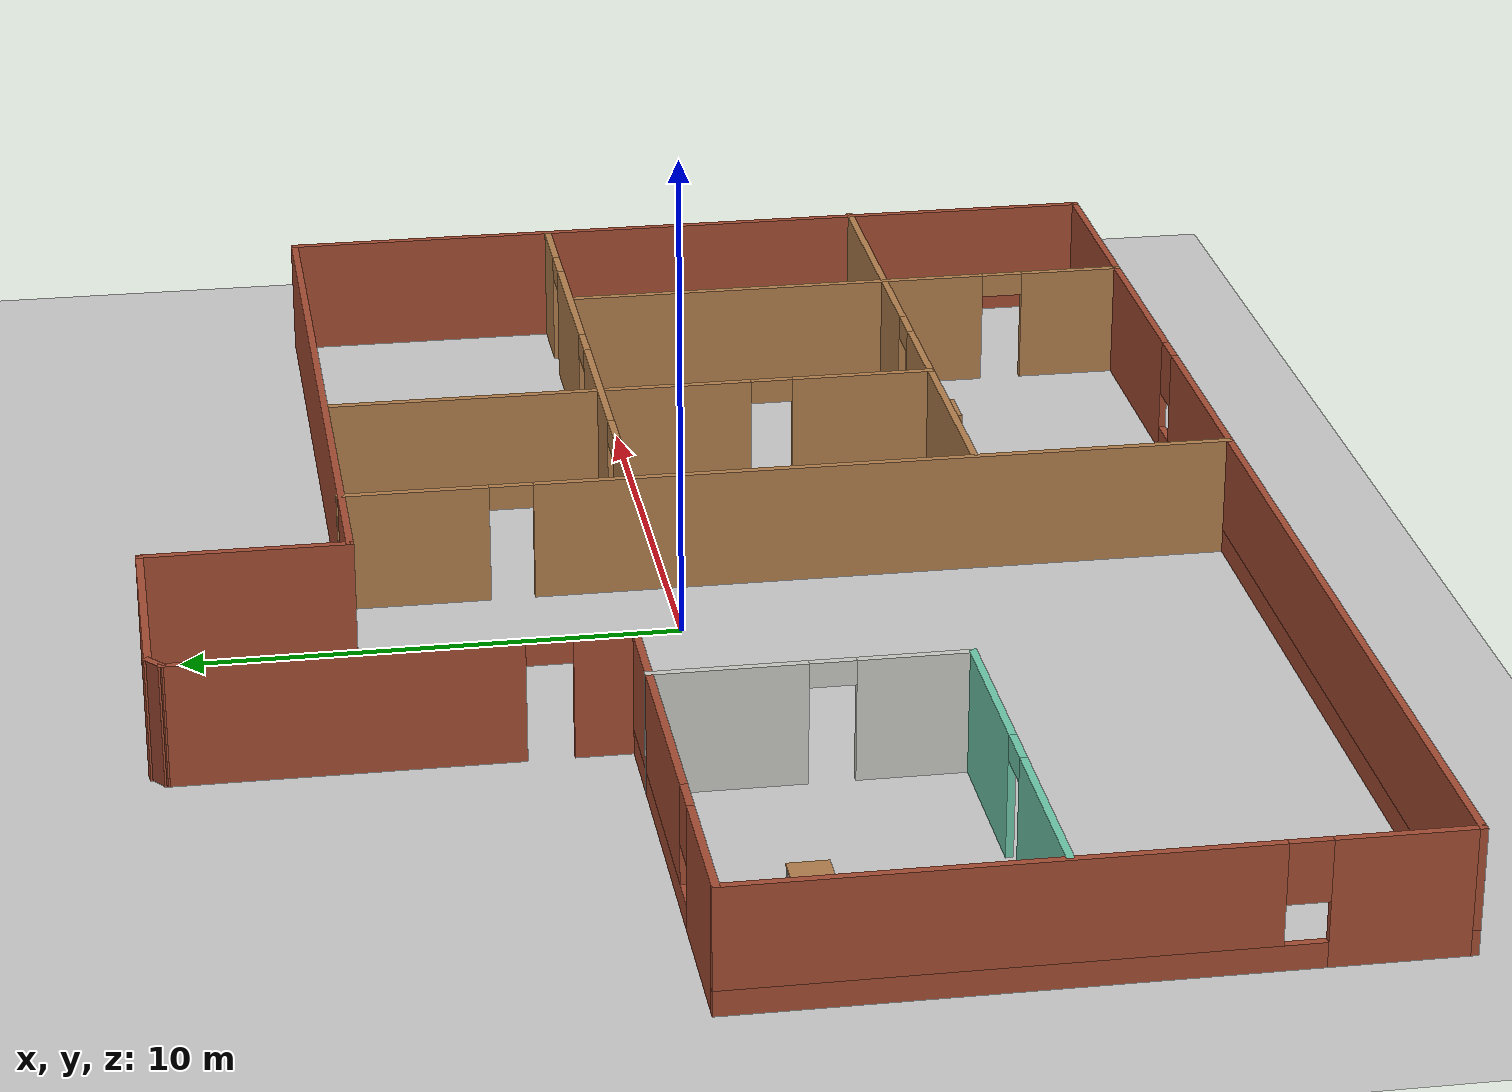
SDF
<sdf version="1.6">
 <world name="default">
  <light name="sun" type="directional">
   <pose>0 0 10 0 -0 0</pose>
   <diffuse>0.8 0.8 0.8 1</diffuse>
   <specular>0.2 0.2 0.2 1</specular>
   <attenuation>
    <range>1000</range>
    <constant>0.9</constant>
    <linear>0.01</linear>
    <quadratic>0.001</quadratic>
   </attenuation>
   <direction>-0.5 0.1 -0.9</direction>
  </light>
  <model name="ground_plane">
   <static>1</static>
   <link name="link">
    <collision name="collision">
     <geometry><plane><normal>0 0 1</normal><size>100 100</size></plane></geometry>
     <surface>
      <contact><collide_bitmask>65535</collide_bitmask></contact>
      <friction><ode><mu>100</mu><mu2>50</mu2></ode></friction>
     </surface>
    </collision>
    <visual name="visual">
     <cast_shadows>0</cast_shadows>
     <geometry><plane><normal>0 0 1</normal><size>100 100</size></plane></geometry>
     <material>
      <script><uri>file://media/materials/scripts/gazebo.material</uri><name>Gazebo/Grey</name></script>
     </material>
    </visual>
   </link>
  </model>
  <gravity>0 0 -9.8</gravity>
  <magnetic_field>6e-06 2.3e-05 -4.2e-05</magnetic_field>
  <atmosphere type="adiabatic"/>
  <physics name="default_physics" default="0" type="ode">
   <max_step_size>0.001</max_step_size>
   <real_time_factor>1</real_time_factor>
   <real_time_update_rate>1000</real_time_update_rate>
  </physics>
  <scene><ambient>0.4 0.4 0.4 1</ambient><background>0.7 0.7 0.7 1</background><shadows>1</shadows></scene>
  <spherical_coordinates>
   <surface_model>EARTH_WGS84</surface_model>
   <latitude_deg>0</latitude_deg>
   <longitude_deg>0</longitude_deg>
   <elevation>0</elevation>
   <heading_deg>0</heading_deg>
  </spherical_coordinates>
  <model name="strange_room_project_1">
   <pose>0.77042 -0.5223 0 0 -0 0</pose>
   <link name="Wall_1">
    <collision name="Wall_1_Collision">
     <geometry><box><size>4.75 0.15 2.5</size></box></geometry>
     <pose>0 0 1.25 0 -0 0</pose>
    </collision>
    <visual name="Wall_1_Visual">
     <pose>0 0 1.25 0 -0 0</pose>
     <geometry><box><size>4.75 0.15 2.5</size></box></geometry>
     <material>
      <script><uri>file://media/materials/scripts/gazebo.material</uri><name>Gazebo/Bricks</name></script>
      <ambient>0.435294 0.796078 0.67451 1</ambient>
     </material>
     <meta><layer>0</layer></meta>
    </visual>
    <pose>-3.26123 11.2097 0 0 -0 0</pose>
   </link>
   <link name="Wall_10">
    <collision name="Wall_10_Collision">
     <geometry><box><size>0.540512 0.15 2.5</size></box></geometry>
     <pose>0 0 1.25 0 -0 0</pose>
    </collision>
    <visual name="Wall_10_Visual">
     <pose>0 0 1.25 0 -0 0</pose>
     <geometry><box><size>0.540512 0.15 2.5</size></box></geometry>
     <material>
      <script><uri>file://media/materials/scripts/gazebo.material</uri><name>Gazebo/Bricks</name></script>
      <ambient>0.435294 0.796078 0.67451 1</ambient>
     </material>
     <meta><layer>0</layer></meta>
    </visual>
    <pose>-5.71122 11.0847 0 0 -0 0.694738</pose>
   </link>
   <link name="Wall_12">
    <pose>-7.58378 -0.937122 0 0 0 -1.5708</pose>
    <visual name="Wall_12_Visual_0">
     <pose>-1.59262 0 1.25 0 -0 0</pose>
     <geometry><box><size>3.06475 0.15 2.5</size></box></geometry>
     <material>
      <script><uri>file://media/materials/scripts/gazebo.material</uri><name>Gazebo/CeilingTiled</name></script>
      <ambient>0.435294 0.796078 0.67451 1</ambient>
     </material>
     <meta><layer>0</layer></meta>
    </visual>
    <collision name="Wall_12_Collision_0">
     <geometry><box><size>3.06475 0.15 2.5</size></box></geometry>
     <pose>-1.59262 0 1.25 0 -0 0</pose>
    </collision>
    <visual name="Wall_12_Visual_1">
     <pose>1.98238 0 1.25 0 -0 0</pose>
     <geometry><box><size>2.28525 0.15 2.5</size></box></geometry>
     <material>
      <script><uri>file://media/materials/scripts/gazebo.material</uri><name>Gazebo/CeilingTiled</name></script>
      <ambient>0.435294 0.796078 0.67451 1</ambient>
     </material>
     <meta><layer>0</layer></meta>
    </visual>
    <collision name="Wall_12_Collision_1">
     <geometry><box><size>2.28525 0.15 2.5</size></box></geometry>
     <pose>1.98238 0 1.25 0 -0 0</pose>
    </collision>
    <visual name="Wall_12_Visual_2">
     <pose>0.389755 0 2.25 0 -0 0</pose>
     <geometry><box><size>0.9 0.15 0.5</size></box></geometry>
     <material>
      <script><uri>file://media/materials/scripts/gazebo.material</uri><name>Gazebo/CeilingTiled</name></script>
      <ambient>0.435294 0.796078 0.67451 1</ambient>
     </material>
     <meta><layer>0</layer></meta>
    </visual>
    <collision name="Wall_12_Collision_2">
     <geometry><box><size>0.9 0.15 0.5</size></box></geometry>
     <pose>0.389755 0 2.25 0 -0 0</pose>
    </collision>
   </link>
   <link name="Wall_15">
    <pose>-11.6338 -3.98712 0 0 -0 3.14159</pose>
    <visual name="Wall_15_Visual_0">
     <pose>-2.35227 0 1.25 0 -0 0</pose>
     <geometry><box><size>3.54546 0.15 2.5</size></box></geometry>
     <material>
      <script><uri>file://media/materials/scripts/gazebo.material</uri><name>Gazebo/Grey</name></script>
      <ambient>0.435294 0.796078 0.67451 1</ambient>
     </material>
     <meta><layer>0</layer></meta>
    </visual>
    <collision name="Wall_15_Collision_0">
     <geometry><box><size>3.54546 0.15 2.5</size></box></geometry>
     <pose>-2.35227 0 1.25 0 -0 0</pose>
    </collision>
    <visual name="Wall_15_Visual_1">
     <pose>2.22273 0 1.25 0 -0 0</pose>
     <geometry><box><size>3.80455 0.15 2.5</size></box></geometry>
     <material>
      <script><uri>file://media/materials/scripts/gazebo.material</uri><name>Gazebo/Grey</name></script>
      <ambient>0.435294 0.796078 0.67451 1</ambient>
     </material>
     <meta><layer>0</layer></meta>
    </visual>
    <collision name="Wall_15_Collision_1">
     <geometry><box><size>3.80455 0.15 2.5</size></box></geometry>
     <pose>2.22273 0 1.25 0 -0 0</pose>
    </collision>
    <visual name="Wall_15_Visual_2">
     <pose>-0.129545 0 2.25 0 -0 0</pose>
     <geometry><box><size>0.9 0.15 0.5</size></box></geometry>
     <material>
      <script><uri>file://media/materials/scripts/gazebo.material</uri><name>Gazebo/Grey</name></script>
      <ambient>0.435294 0.796078 0.67451 1</ambient>
     </material>
     <meta><layer>0</layer></meta>
    </visual>
    <collision name="Wall_15_Collision_2">
     <geometry><box><size>0.9 0.15 0.5</size></box></geometry>
     <pose>-0.129545 0 2.25 0 -0 0</pose>
    </collision>
   </link>
   <link name="Wall_17">
    <pose>1.35237 -2.03802 0 0 0 -1.5708</pose>
    <visual name="Wall_17_Visual_0">
     <pose>-7.7112 0 1.25 0 -0 0</pose>
     <geometry><box><size>3.07761 0.15 2.5</size></box></geometry>
     <material>
      <script><uri>file://media/materials/scripts/gazebo.material</uri><name>Gazebo/Wood</name></script>
      <ambient>0.435294 0.796078 0.67451 1</ambient>
     </material>
     <meta><layer>0</layer></meta>
    </visual>
    <collision name="Wall_17_Collision_0">
     <geometry><box><size>3.07761 0.15 2.5</size></box></geometry>
     <pose>-7.7112 0 1.25 0 -0 0</pose>
    </collision>
    <visual name="Wall_17_Visual_1">
     <pose>1.9888 0 1.25 0 -0 0</pose>
     <geometry><box><size>14.5224 0.15 2.5</size></box></geometry>
     <material>
      <script><uri>file://media/materials/scripts/gazebo.material</uri><name>Gazebo/Wood</name></script>
      <ambient>0.435294 0.796078 0.67451 1</ambient>
     </material>
     <meta><layer>0</layer></meta>
    </visual>
    <collision name="Wall_17_Collision_1">
     <geometry><box><size>14.5224 0.15 2.5</size></box></geometry>
     <pose>1.9888 0 1.25 0 -0 0</pose>
    </collision>
    <visual name="Wall_17_Visual_2">
     <pose>-5.72239 0 2.25 0 -0 0</pose>
     <geometry><box><size>0.9 0.15 0.5</size></box></geometry>
     <material>
      <script><uri>file://media/materials/scripts/gazebo.material</uri><name>Gazebo/Wood</name></script>
      <ambient>0.435294 0.796078 0.67451 1</ambient>
     </material>
     <meta><layer>0</layer></meta>
    </visual>
    <collision name="Wall_17_Collision_2">
     <geometry><box><size>0.9 0.15 0.5</size></box></geometry>
     <pose>-5.72239 0 2.25 0 -0 0</pose>
    </collision>
   </link>
   <link name="Wall_19">
    <pose>8.46168 1.25779 0 0 -0 0</pose>
    <visual name="Wall_19_Visual_0">
     <pose>-6.07739 0 1.25 0 -0 0</pose>
     <geometry><box><size>2.09521 0.15 2.5</size></box></geometry>
     <material>
      <script><uri>file://media/materials/scripts/gazebo.material</uri><name>Gazebo/Wood</name></script>
      <ambient>0.435294 0.796078 0.67451 1</ambient>
     </material>
     <meta><layer>0</layer></meta>
    </visual>
    <collision name="Wall_19_Collision_0">
     <geometry><box><size>2.09521 0.15 2.5</size></box></geometry>
     <pose>-6.07739 0 1.25 0 -0 0</pose>
    </collision>
    <visual name="Wall_19_Visual_1">
     <pose>-2.13756 0 1.25 0 -0 0</pose>
     <geometry><box><size>3.98446 0.15 2.5</size></box></geometry>
     <material>
      <script><uri>file://media/materials/scripts/gazebo.material</uri><name>Gazebo/Wood</name></script>
      <ambient>0.435294 0.796078 0.67451 1</ambient>
     </material>
     <meta><layer>0</layer></meta>
    </visual>
    <collision name="Wall_19_Collision_1">
     <geometry><box><size>3.98446 0.15 2.5</size></box></geometry>
     <pose>-2.13756 0 1.25 0 -0 0</pose>
    </collision>
    <visual name="Wall_19_Visual_2">
     <pose>2.70297 0 1.25 0 -0 0</pose>
     <geometry><box><size>3.8966 0.15 2.5</size></box></geometry>
     <material>
      <script><uri>file://media/materials/scripts/gazebo.material</uri><name>Gazebo/Wood</name></script>
      <ambient>0.435294 0.796078 0.67451 1</ambient>
     </material>
     <meta><layer>0</layer></meta>
    </visual>
    <collision name="Wall_19_Collision_2">
     <geometry><box><size>3.8966 0.15 2.5</size></box></geometry>
     <pose>2.70297 0 1.25 0 -0 0</pose>
    </collision>
    <visual name="Wall_19_Visual_3">
     <pose>6.33814 0 1.25 0 -0 0</pose>
     <geometry><box><size>1.57373 0.15 2.5</size></box></geometry>
     <material>
      <script><uri>file://media/materials/scripts/gazebo.material</uri><name>Gazebo/Wood</name></script>
      <ambient>0.435294 0.796078 0.67451 1</ambient>
     </material>
     <meta><layer>0</layer></meta>
    </visual>
    <collision name="Wall_19_Collision_3">
     <geometry><box><size>1.57373 0.15 2.5</size></box></geometry>
     <pose>6.33814 0 1.25 0 -0 0</pose>
    </collision>
    <visual name="Wall_19_Visual_4">
     <pose>-4.57979 0 2.25 0 -0 0</pose>
     <geometry><box><size>0.9 0.15 0.5</size></box></geometry>
     <material>
      <script><uri>file://media/materials/scripts/gazebo.material</uri><name>Gazebo/Wood</name></script>
      <ambient>0.435294 0.796078 0.67451 1</ambient>
     </material>
     <meta><layer>0</layer></meta>
    </visual>
    <collision name="Wall_19_Collision_4">
     <geometry><box><size>0.9 0.15 0.5</size></box></geometry>
     <pose>-4.57979 0 2.25 0 -0 0</pose>
    </collision>
    <visual name="Wall_19_Visual_5">
     <pose>0.304668 0 2.25 0 -0 0</pose>
     <geometry><box><size>0.9 0.15 0.5</size></box></geometry>
     <material>
      <script><uri>file://media/materials/scripts/gazebo.material</uri><name>Gazebo/Wood</name></script>
      <ambient>0.435294 0.796078 0.67451 1</ambient>
     </material>
     <meta><layer>0</layer></meta>
    </visual>
    <collision name="Wall_19_Collision_5">
     <geometry><box><size>0.9 0.15 0.5</size></box></geometry>
     <pose>0.304668 0 2.25 0 -0 0</pose>
    </collision>
    <visual name="Wall_19_Visual_6">
     <pose>5.10127 0 2.25 0 -0 0</pose>
     <geometry><box><size>0.9 0.15 0.5</size></box></geometry>
     <material>
      <script><uri>file://media/materials/scripts/gazebo.material</uri><name>Gazebo/Wood</name></script>
      <ambient>0.435294 0.796078 0.67451 1</ambient>
     </material>
     <meta><layer>0</layer></meta>
    </visual>
    <collision name="Wall_19_Collision_6">
     <geometry><box><size>0.9 0.15 0.5</size></box></geometry>
     <pose>5.10127 0 2.25 0 -0 0</pose>
    </collision>
   </link>
   <link name="Wall_2">
    <collision name="Wall_2_Collision">
     <geometry><box><size>4.25 0.15 2.5</size></box></geometry>
     <pose>0 0 1.25 0 -0 0</pose>
    </collision>
    <visual name="Wall_2_Visual">
     <pose>0 0 1.25 0 -0 0</pose>
     <geometry><box><size>4.25 0.15 2.5</size></box></geometry>
     <material>
      <script><uri>file://media/materials/scripts/gazebo.material</uri><name>Gazebo/Bricks</name></script>
      <ambient>0.435294 0.796078 0.67451 1</ambient>
     </material>
     <meta><layer>0</layer></meta>
    </visual>
    <pose>-0.961225 9.15968 0 0 0 -1.5708</pose>
   </link>
   <link name="Wall_3">
    <collision name="Wall_3_Collision">
     <geometry><box><size>16.75 0.15 2.5</size></box></geometry>
     <pose>0 0 1.25 0 -0 0</pose>
    </collision>
    <visual name="Wall_3_Visual">
     <pose>0 0 1.25 0 -0 0</pose>
     <geometry><box><size>16.75 0.15 2.5</size></box></geometry>
     <material>
      <script><uri>file://media/materials/scripts/gazebo.material</uri><name>Gazebo/Bricks</name></script>
      <ambient>0.435294 0.796078 0.67451 1</ambient>
     </material>
     <meta><layer>0</layer></meta>
    </visual>
    <pose>7.33878 7.10969 0 0 -0 0</pose>
   </link>
   <link name="Wall_4">
    <collision name="Wall_4_Collision">
     <geometry><box><size>18.5 0.15 2.5</size></box></geometry>
     <pose>0 0 1.25 0 -0 0</pose>
    </collision>
    <visual name="Wall_4_Visual">
     <pose>0 0 1.25 0 -0 0</pose>
     <geometry><box><size>18.5 0.15 2.5</size></box></geometry>
     <material>
      <script><uri>file://media/materials/scripts/gazebo.material</uri><name>Gazebo/Bricks</name></script>
      <ambient>0.435294 0.796078 0.67451 1</ambient>
     </material>
     <meta><layer>0</layer></meta>
    </visual>
    <pose>15.6388 -2.06532 0 0 0 -1.5708</pose>
   </link>
   <link name="Wall_5">
    <pose>-0.036225 -11.2403 0 0 -0 3.14159</pose>
    <visual name="Wall_5_Visual_0">
     <pose>-11.2976 0 1.25 0 -0 0</pose>
     <geometry><box><size>8.90478 0.15 2.5</size></box></geometry>
     <material>
      <script><uri>file://media/materials/scripts/gazebo.material</uri><name>Gazebo/Bricks</name></script>
      <ambient>0.435294 0.796078 0.67451 1</ambient>
     </material>
     <meta><layer>0</layer></meta>
    </visual>
    <collision name="Wall_5_Collision_0">
     <geometry><box><size>8.90478 0.15 2.5</size></box></geometry>
     <pose>-11.2976 0 1.25 0 -0 0</pose>
    </collision>
    <visual name="Wall_5_Visual_1">
     <pose>4.45239 0 0.25 0 -0 0</pose>
     <geometry><box><size>22.5952 0.15 0.5</size></box></geometry>
     <material>
      <script><uri>file://media/materials/scripts/gazebo.material</uri><name>Gazebo/Bricks</name></script>
      <ambient>0.435294 0.796078 0.67451 1</ambient>
     </material>
     <meta><layer>0</layer></meta>
    </visual>
    <collision name="Wall_5_Collision_1">
     <geometry><box><size>22.5952 0.15 0.5</size></box></geometry>
     <pose>4.45239 0 0.25 0 -0 0</pose>
    </collision>
    <visual name="Wall_5_Visual_2">
     <pose>4.85239 0 1.5 0 -0 0</pose>
     <geometry><box><size>21.7952 0.15 2</size></box></geometry>
     <material>
      <script><uri>file://media/materials/scripts/gazebo.material</uri><name>Gazebo/Bricks</name></script>
      <ambient>0.435294 0.796078 0.67451 1</ambient>
     </material>
     <meta><layer>0</layer></meta>
    </visual>
    <collision name="Wall_5_Collision_2">
     <geometry><box><size>21.7952 0.15 2</size></box></geometry>
     <pose>4.85239 0 1.5 0 -0 0</pose>
    </collision>
    <visual name="Wall_5_Visual_3">
     <pose>-6.44522 0 1.9 0 -0 0</pose>
     <geometry><box><size>0.8 0.15 1.2</size></box></geometry>
     <material>
      <script><uri>file://media/materials/scripts/gazebo.material</uri><name>Gazebo/Bricks</name></script>
      <ambient>0.435294 0.796078 0.67451 1</ambient>
     </material>
     <meta><layer>0</layer></meta>
    </visual>
    <collision name="Wall_5_Collision_3">
     <geometry><box><size>0.8 0.15 1.2</size></box></geometry>
     <pose>-6.44522 0 1.9 0 -0 0</pose>
    </collision>
   </link>
   <link name="Wall_6">
    <pose>-15.7112 -4.56531 0 0 -0 1.5708</pose>
    <visual name="Wall_6_Visual_0">
     <pose>-5.38753 0 1.25 0 -0 0</pose>
     <geometry><box><size>2.72495 0.15 2.5</size></box></geometry>
     <material>
      <script><uri>file://media/materials/scripts/gazebo.material</uri><name>Gazebo/Bricks</name></script>
      <ambient>0.435294 0.796078 0.67451 1</ambient>
     </material>
     <meta><layer>0</layer></meta>
    </visual>
    <collision name="Wall_6_Collision_0">
     <geometry><box><size>2.72495 0.15 2.5</size></box></geometry>
     <pose>-5.38753 0 1.25 0 -0 0</pose>
    </collision>
    <visual name="Wall_6_Visual_1">
     <pose>1.36247 0 0.25 0 -0 0</pose>
     <geometry><box><size>10.7751 0.15 0.5</size></box></geometry>
     <material>
      <script><uri>file://media/materials/scripts/gazebo.material</uri><name>Gazebo/Bricks</name></script>
      <ambient>0.435294 0.796078 0.67451 1</ambient>
     </material>
     <meta><layer>0</layer></meta>
    </visual>
    <collision name="Wall_6_Collision_1">
     <geometry><box><size>10.7751 0.15 0.5</size></box></geometry>
     <pose>1.36247 0 0.25 0 -0 0</pose>
    </collision>
    <visual name="Wall_6_Visual_2">
     <pose>1.76247 0 1.5 0 -0 0</pose>
     <geometry><box><size>9.97505 0.15 2</size></box></geometry>
     <material>
      <script><uri>file://media/materials/scripts/gazebo.material</uri><name>Gazebo/Bricks</name></script>
      <ambient>0.435294 0.796078 0.67451 1</ambient>
     </material>
     <meta><layer>0</layer></meta>
    </visual>
    <collision name="Wall_6_Collision_2">
     <geometry><box><size>9.97505 0.15 2</size></box></geometry>
     <pose>1.76247 0 1.5 0 -0 0</pose>
    </collision>
    <visual name="Wall_6_Visual_3">
     <pose>-3.62505 0 1.9 0 -0 0</pose>
     <geometry><box><size>0.8 0.15 1.2</size></box></geometry>
     <material>
      <script><uri>file://media/materials/scripts/gazebo.material</uri><name>Gazebo/Bricks</name></script>
      <ambient>0.435294 0.796078 0.67451 1</ambient>
     </material>
     <meta><layer>0</layer></meta>
    </visual>
    <collision name="Wall_6_Collision_3">
     <geometry><box><size>0.8 0.15 1.2</size></box></geometry>
     <pose>-3.62505 0 1.9 0 -0 0</pose>
    </collision>
   </link>
   <link name="Wall_65">
    <pose>8.53623 -5.87592 0 0 -0 3.14159</pose>
    <visual name="Wall_65_Visual_0">
     <pose>-3.95776 0 1.25 0 -0 0</pose>
     <geometry><box><size>6.58449 0.15 2.5</size></box></geometry>
     <material>
      <script><uri>file://media/materials/scripts/gazebo.material</uri><name>Gazebo/Wood</name></script>
      <ambient>0.435294 0.796078 0.67451 1</ambient>
     </material>
     <meta><layer>0</layer></meta>
    </visual>
    <collision name="Wall_65_Collision_0">
     <geometry><box><size>6.58449 0.15 2.5</size></box></geometry>
     <pose>-3.95776 0 1.25 0 -0 0</pose>
    </collision>
    <visual name="Wall_65_Visual_1">
     <pose>3.74224 0 1.25 0 -0 0</pose>
     <geometry><box><size>7.01551 0.15 2.5</size></box></geometry>
     <material>
      <script><uri>file://media/materials/scripts/gazebo.material</uri><name>Gazebo/Wood</name></script>
      <ambient>0.435294 0.796078 0.67451 1</ambient>
     </material>
     <meta><layer>0</layer></meta>
    </visual>
    <collision name="Wall_65_Collision_1">
     <geometry><box><size>7.01551 0.15 2.5</size></box></geometry>
     <pose>3.74224 0 1.25 0 -0 0</pose>
    </collision>
    <visual name="Wall_65_Visual_2">
     <pose>-0.215513 0 2.25 0 -0 0</pose>
     <geometry><box><size>0.9 0.15 0.5</size></box></geometry>
     <material>
      <script><uri>file://media/materials/scripts/gazebo.material</uri><name>Gazebo/Wood</name></script>
      <ambient>0.435294 0.796078 0.67451 1</ambient>
     </material>
     <meta><layer>0</layer></meta>
    </visual>
    <collision name="Wall_65_Collision_2">
     <geometry><box><size>0.9 0.15 0.5</size></box></geometry>
     <pose>-0.215513 0 2.25 0 -0 0</pose>
    </collision>
   </link>
   <link name="Wall_7">
    <pose>-10.7862 2.10968 0 0 -0 0</pose>
    <visual name="Wall_7_Visual_0">
     <pose>-3.51411 0 1.25 0 -0 0</pose>
     <geometry><box><size>2.97177 0.15 2.5</size></box></geometry>
     <material>
      <script><uri>file://media/materials/scripts/gazebo.material</uri><name>Gazebo/Bricks</name></script>
      <ambient>0.435294 0.796078 0.67451 1</ambient>
     </material>
     <meta><layer>0</layer></meta>
    </visual>
    <collision name="Wall_7_Collision_0">
     <geometry><box><size>2.97177 0.15 2.5</size></box></geometry>
     <pose>-3.51411 0 1.25 0 -0 0</pose>
    </collision>
    <visual name="Wall_7_Visual_1">
     <pose>1.48589 0 0.25 0 -0 0</pose>
     <geometry><box><size>7.02823 0.15 0.5</size></box></geometry>
     <material>
      <script><uri>file://media/materials/scripts/gazebo.material</uri><name>Gazebo/Bricks</name></script>
      <ambient>0.435294 0.796078 0.67451 1</ambient>
     </material>
     <meta><layer>0</layer></meta>
    </visual>
    <collision name="Wall_7_Collision_1">
     <geometry><box><size>7.02823 0.15 0.5</size></box></geometry>
     <pose>1.48589 0 0.25 0 -0 0</pose>
    </collision>
    <visual name="Wall_7_Visual_2">
     <pose>1.88589 0 1.5 0 -0 0</pose>
     <geometry><box><size>6.22823 0.15 2</size></box></geometry>
     <material>
      <script><uri>file://media/materials/scripts/gazebo.material</uri><name>Gazebo/Bricks</name></script>
      <ambient>0.435294 0.796078 0.67451 1</ambient>
     </material>
     <meta><layer>0</layer></meta>
    </visual>
    <collision name="Wall_7_Collision_2">
     <geometry><box><size>6.22823 0.15 2</size></box></geometry>
     <pose>1.88589 0 1.5 0 -0 0</pose>
    </collision>
    <visual name="Wall_7_Visual_3">
     <pose>-1.62823 0 1.9 0 -0 0</pose>
     <geometry><box><size>0.8 0.15 1.2</size></box></geometry>
     <material>
      <script><uri>file://media/materials/scripts/gazebo.material</uri><name>Gazebo/Bricks</name></script>
      <ambient>0.435294 0.796078 0.67451 1</ambient>
     </material>
     <meta><layer>0</layer></meta>
    </visual>
    <collision name="Wall_7_Collision_3">
     <geometry><box><size>0.8 0.15 1.2</size></box></geometry>
     <pose>-1.62823 0 1.9 0 -0 0</pose>
    </collision>
   </link>
   <link name="Wall_74">
    <pose>11.3966 -5.06353 0 0 -0 1.5708</pose>
    <visual name="Wall_74_Visual_0">
     <pose>-5.1078 0 1.25 0 -0 0</pose>
     <geometry><box><size>2.2844 0.15 2.5</size></box></geometry>
     <material>
      <script><uri>file://media/materials/scripts/gazebo.material</uri><name>Gazebo/Wood</name></script>
      <ambient>0.435294 0.796078 0.67451 1</ambient>
     </material>
     <meta><layer>0</layer></meta>
    </visual>
    <collision name="Wall_74_Collision_0">
     <geometry><box><size>2.2844 0.15 2.5</size></box></geometry>
     <pose>-5.1078 0 1.25 0 -0 0</pose>
    </collision>
    <visual name="Wall_74_Visual_1">
     <pose>1.5922 0 1.25 0 -0 0</pose>
     <geometry><box><size>9.3156 0.15 2.5</size></box></geometry>
     <material>
      <script><uri>file://media/materials/scripts/gazebo.material</uri><name>Gazebo/Wood</name></script>
      <ambient>0.435294 0.796078 0.67451 1</ambient>
     </material>
     <meta><layer>0</layer></meta>
    </visual>
    <collision name="Wall_74_Collision_1">
     <geometry><box><size>9.3156 0.15 2.5</size></box></geometry>
     <pose>1.5922 0 1.25 0 -0 0</pose>
    </collision>
    <visual name="Wall_74_Visual_2">
     <pose>-3.5156 0 2.25 0 -0 0</pose>
     <geometry><box><size>0.9 0.15 0.5</size></box></geometry>
     <material>
      <script><uri>file://media/materials/scripts/gazebo.material</uri><name>Gazebo/Wood</name></script>
      <ambient>0.435294 0.796078 0.67451 1</ambient>
     </material>
     <meta><layer>0</layer></meta>
    </visual>
    <collision name="Wall_74_Collision_2">
     <geometry><box><size>0.9 0.15 0.5</size></box></geometry>
     <pose>-3.5156 0 2.25 0 -0 0</pose>
    </collision>
   </link>
   <link name="Wall_76">
    <pose>6.03149 0.555756 0 0 -0 1.5708</pose>
    <visual name="Wall_76_Visual_0">
     <pose>-4.96159 0 1.25 0 -0 0</pose>
     <geometry><box><size>3.07682 0.15 2.5</size></box></geometry>
     <material>
      <script><uri>file://media/materials/scripts/gazebo.material</uri><name>Gazebo/Wood</name></script>
      <ambient>0.435294 0.796078 0.67451 1</ambient>
     </material>
     <meta><layer>0</layer></meta>
    </visual>
    <collision name="Wall_76_Collision_0">
     <geometry><box><size>3.07682 0.15 2.5</size></box></geometry>
     <pose>-4.96159 0 1.25 0 -0 0</pose>
    </collision>
    <visual name="Wall_76_Visual_1">
     <pose>1.98841 0 1.25 0 -0 0</pose>
     <geometry><box><size>9.02318 0.15 2.5</size></box></geometry>
     <material>
      <script><uri>file://media/materials/scripts/gazebo.material</uri><name>Gazebo/Wood</name></script>
      <ambient>0.435294 0.796078 0.67451 1</ambient>
     </material>
     <meta><layer>0</layer></meta>
    </visual>
    <collision name="Wall_76_Collision_1">
     <geometry><box><size>9.02318 0.15 2.5</size></box></geometry>
     <pose>1.98841 0 1.25 0 -0 0</pose>
    </collision>
    <visual name="Wall_76_Visual_2">
     <pose>-2.97318 0 2.25 0 -0 0</pose>
     <geometry><box><size>0.9 0.15 0.5</size></box></geometry>
     <material>
      <script><uri>file://media/materials/scripts/gazebo.material</uri><name>Gazebo/Wood</name></script>
      <ambient>0.435294 0.796078 0.67451 1</ambient>
     </material>
     <meta><layer>0</layer></meta>
    </visual>
    <collision name="Wall_76_Collision_2">
     <geometry><box><size>0.9 0.15 0.5</size></box></geometry>
     <pose>-2.97318 0 2.25 0 -0 0</pose>
    </collision>
   </link>
   <link name="Wall_9">
    <pose>-5.86123 6.53468 0 0 -0 1.5708</pose>
    <visual name="Wall_9_Visual_0">
     <pose>-3.86428 0 1.25 0 -0 0</pose>
     <geometry><box><size>1.27144 0.15 2.5</size></box></geometry>
     <material>
      <script><uri>file://media/materials/scripts/gazebo.material</uri><name>Gazebo/Bricks</name></script>
      <ambient>0.435294 0.796078 0.67451 1</ambient>
     </material>
     <meta><layer>0</layer></meta>
    </visual>
    <collision name="Wall_9_Collision_0">
     <geometry><box><size>1.27144 0.15 2.5</size></box></geometry>
     <pose>-3.86428 0 1.25 0 -0 0</pose>
    </collision>
    <visual name="Wall_9_Visual_1">
     <pose>1.08572 0 1.25 0 -0 0</pose>
     <geometry><box><size>6.82856 0.15 2.5</size></box></geometry>
     <material>
      <script><uri>file://media/materials/scripts/gazebo.material</uri><name>Gazebo/Bricks</name></script>
      <ambient>0.435294 0.796078 0.67451 1</ambient>
     </material>
     <meta><layer>0</layer></meta>
    </visual>
    <collision name="Wall_9_Collision_1">
     <geometry><box><size>6.82856 0.15 2.5</size></box></geometry>
     <pose>1.08572 0 1.25 0 -0 0</pose>
    </collision>
    <visual name="Wall_9_Visual_2">
     <pose>-2.77856 0 2.25 0 -0 0</pose>
     <geometry><box><size>0.9 0.15 0.5</size></box></geometry>
     <material>
      <script><uri>file://media/materials/scripts/gazebo.material</uri><name>Gazebo/Bricks</name></script>
      <ambient>0.435294 0.796078 0.67451 1</ambient>
     </material>
     <meta><layer>0</layer></meta>
    </visual>
    <collision name="Wall_9_Collision_2">
     <geometry><box><size>0.9 0.15 0.5</size></box></geometry>
     <pose>-2.77856 0 2.25 0 -0 0</pose>
    </collision>
   </link>
   <static>1</static>
  </model>
  <model name="bookshelf">
   <static>1</static>
   <link name="link">
    <inertial><mass>1</mass></inertial>
    <collision name="back">
     <pose>0 0.005 0.6 0 -0 0</pose>
     <geometry><box><size>0.9 0.01 1.2</size></box></geometry>
    </collision>
    <visual name="visual1">
     <pose>0 0.005 0.6 0 -0 0</pose>
     <geometry><box><size>0.9 0.01 1.2</size></box></geometry>
     <material>
      <script><uri>file://media/materials/scripts/gazebo.material</uri><name>Gazebo/Wood</name></script>
     </material>
    </visual>
    <collision name="left_side">
     <pose>0.45 -0.195 0.6 0 -0 0</pose>
     <geometry><box><size>0.02 0.4 1.2</size></box></geometry>
    </collision>
    <visual name="visual2">
     <pose>0.45 -0.195 0.6 0 -0 0</pose>
     <geometry><box><size>0.02 0.4 1.2</size></box></geometry>
     <material>
      <script><uri>file://media/materials/scripts/gazebo.material</uri><name>Gazebo/Wood</name></script>
     </material>
    </visual>
    <collision name="right_side">
     <pose>-0.45 -0.195 0.6 0 -0 0</pose>
     <geometry><box><size>0.02 0.4 1.2</size></box></geometry>
    </collision>
    <visual name="visual3">
     <pose>-0.45 -0.195 0.6 0 -0 0</pose>
     <geometry><box><size>0.02 0.4 1.2</size></box></geometry>
     <material>
      <script><uri>file://media/materials/scripts/gazebo.material</uri><name>Gazebo/Wood</name></script>
     </material>
    </visual>
    <collision name="bottom">
     <pose>0 -0.195 0.03 0 -0 0</pose>
     <geometry><box><size>0.88 0.4 0.06</size></box></geometry>
    </collision>
    <visual name="visual4">
     <pose>0 -0.195 0.03 0 -0 0</pose>
     <geometry><box><size>0.88 0.4 0.06</size></box></geometry>
     <material>
      <script><uri>file://media/materials/scripts/gazebo.material</uri><name>Gazebo/Wood</name></script>
     </material>
    </visual>
    <collision name="top">
     <pose>0 -0.195 1.19 0 -0 0</pose>
     <geometry><box><size>0.88 0.4 0.02</size></box></geometry>
    </collision>
    <visual name="visual5">
     <pose>0 -0.195 1.19 0 -0 0</pose>
     <geometry><box><size>0.88 0.4 0.02</size></box></geometry>
     <material>
      <script><uri>file://media/materials/scripts/gazebo.material</uri><name>Gazebo/Wood</name></script>
     </material>
    </visual>
    <collision name="low_shelf">
     <pose>0 -0.195 0.43 0 -0 0</pose>
     <geometry><box><size>0.88 0.4 0.02</size></box></geometry>
    </collision>
    <visual name="visual6">
     <pose>0 -0.195 0.43 0 -0 0</pose>
     <geometry><box><size>0.88 0.4 0.02</size></box></geometry>
     <material>
      <script><uri>file://media/materials/scripts/gazebo.material</uri><name>Gazebo/Wood</name></script>
     </material>
    </visual>
    <collision name="high_shelf">
     <pose>0 -0.195 0.8 0 -0 0</pose>
     <geometry><box><size>0.88 0.4 0.02</size></box></geometry>
    </collision>
    <visual name="visual7">
     <pose>0 -0.195 0.8 0 -0 0</pose>
     <geometry><box><size>0.88 0.4 0.02</size></box></geometry>
     <material>
      <script><uri>file://media/materials/scripts/gazebo.material</uri><name>Gazebo/Wood</name></script>
     </material>
    </visual>
   </link>
   <pose>7.70525 -6.81529 0 0 -0 0</pose>
  </model>
  <model name="cabinet">
   <static>1</static>
   <link name="cabinet_bottom_plate">
    <inertial>
     <pose>0 0 -1 0 -0 0</pose>
     <inertia><ixx>2.05</ixx><ixy>0</ixy><ixz>0</ixz><iyy>2.05</iyy><iyz>0</iyz><izz>2.05</izz></inertia>
     <mass>25</mass>
    </inertial>
    <collision name="cabinet_bottom_plate_geom">
     <pose>0 0 0.01 0 -0 0</pose>
     <geometry><box><size>0.45 0.45 0.02</size></box></geometry>
    </collision>
    <visual name="cabinet_bottom_plate_geom_visual">
     <pose>0 0 0.01 0 -0 0</pose>
     <geometry><box><size>0.45 0.45 0.02</size></box></geometry>
     <material>
      <script><uri>file://media/materials/scripts/gazebo.material</uri><name>Gazebo/Wood</name></script>
     </material>
    </visual>
    <collision name="cabinet_bottom_plate_geom_cabinet_back_plate">
     <pose>0.235 0 0.51 0 -0 0</pose>
     <geometry><box><size>0.02 0.45 1.02</size></box></geometry>
    </collision>
    <visual name="cabinet_bottom_plate_geom_cabinet_back_plate_visual">
     <pose>0.235 0 0.51 0 -0 0</pose>
     <geometry><box><size>0.02 0.45 1.02</size></box></geometry>
     <material>
      <script><uri>file://media/materials/scripts/gazebo.material</uri><name>Gazebo/Wood</name></script>
     </material>
    </visual>
    <collision name="cabinet_bottom_plate_geom_cabinet_left_plate">
     <pose>0 0.235 0.51 0 -0 0</pose>
     <geometry><box><size>0.45 0.02 1.02</size></box></geometry>
    </collision>
    <visual name="cabinet_bottom_plate_geom_cabinet_left_plate_visual">
     <pose>0 0.235 0.51 0 -0 0</pose>
     <geometry><box><size>0.45 0.02 1.02</size></box></geometry>
     <material>
      <script><uri>file://media/materials/scripts/gazebo.material</uri><name>Gazebo/Wood</name></script>
     </material>
    </visual>
    <collision name="cabinet_bottom_plate_geom_cabinet_middle_plate">
     <pose>0 0 0.51 0 -0 0</pose>
     <geometry><box><size>0.45 0.45 0.02</size></box></geometry>
    </collision>
    <visual name="cabinet_bottom_plate_geom_cabinet_middle_plate_visual">
     <pose>0 0 0.51 0 -0 0</pose>
     <geometry><box><size>0.45 0.45 0.02</size></box></geometry>
     <material>
      <script><uri>file://media/materials/scripts/gazebo.material</uri><name>Gazebo/Wood</name></script>
     </material>
    </visual>
    <collision name="cabinet_bottom_plate_geom_cabinet_right_plate">
     <pose>0 -0.235 0.51 0 -0 0</pose>
     <geometry><box><size>0.45 0.02 1.02</size></box></geometry>
    </collision>
    <visual name="cabinet_bottom_plate_geom_cabinet_right_plate_visual">
     <pose>0 -0.235 0.51 0 -0 0</pose>
     <geometry><box><size>0.45 0.02 1.02</size></box></geometry>
     <material>
      <script><uri>file://media/materials/scripts/gazebo.material</uri><name>Gazebo/Wood</name></script>
     </material>
    </visual>
    <collision name="cabinet_bottom_plate_geom_cabinet_top_plate">
     <pose>0 0 1.01 0 -0 0</pose>
     <geometry><box><size>0.45 0.45 0.02</size></box></geometry>
    </collision>
    <visual name="cabinet_bottom_plate_geom_cabinet_top_plate_visual">
     <pose>0 0 1.01 0 -0 0</pose>
     <geometry><box><size>0.45 0.45 0.02</size></box></geometry>
     <material>
      <script><uri>file://media/materials/scripts/gazebo.material</uri><name>Gazebo/Wood</name></script>
     </material>
    </visual>
   </link>
   <pose>12.7476 -7.009 0 0 -0 0</pose>
  </model>
  <model name="table">
   <static>1</static>
   <link name="link">
    <collision name="surface">
     <pose>0 0 1 0 -0 0</pose>
     <geometry><box><size>1.5 0.8 0.03</size></box></geometry>
     <surface><friction><ode><mu>0.6</mu><mu2>0.6</mu2></ode></friction></surface>
    </collision>
    <visual name="visual1">
     <pose>0 0 1 0 -0 0</pose>
     <geometry><box><size>1.5 0.8 0.03</size></box></geometry>
     <material>
      <script><uri>file://media/materials/scripts/gazebo.material</uri><name>Gazebo/Wood</name></script>
     </material>
    </visual>
    <collision name="front_left_leg">
     <pose>0.68 0.38 0.5 0 -0 0</pose>
     <geometry><cylinder><radius>0.02</radius><length>1</length></cylinder></geometry>
    </collision>
    <visual name="front_left_leg">
     <pose>0.68 0.38 0.5 0 -0 0</pose>
     <geometry><cylinder><radius>0.02</radius><length>1</length></cylinder></geometry>
     <material>
      <script><uri>file://media/materials/scripts/gazebo.material</uri><name>Gazebo/Grey</name></script>
     </material>
    </visual>
    <collision name="front_right_leg">
     <pose>0.68 -0.38 0.5 0 -0 0</pose>
     <geometry><cylinder><radius>0.02</radius><length>1</length></cylinder></geometry>
    </collision>
    <visual name="front_right_leg">
     <pose>0.68 -0.38 0.5 0 -0 0</pose>
     <geometry><cylinder><radius>0.02</radius><length>1</length></cylinder></geometry>
     <material>
      <script><uri>file://media/materials/scripts/gazebo.material</uri><name>Gazebo/Grey</name></script>
     </material>
    </visual>
    <collision name="back_right_leg">
     <pose>-0.68 -0.38 0.5 0 -0 0</pose>
     <geometry><cylinder><radius>0.02</radius><length>1</length></cylinder></geometry>
    </collision>
    <visual name="back_right_leg">
     <pose>-0.68 -0.38 0.5 0 -0 0</pose>
     <geometry><cylinder><radius>0.02</radius><length>1</length></cylinder></geometry>
     <material>
      <script><uri>file://media/materials/scripts/gazebo.material</uri><name>Gazebo/Grey</name></script>
     </material>
    </visual>
    <collision name="back_left_leg">
     <pose>-0.68 0.38 0.5 0 -0 0</pose>
     <geometry><cylinder><radius>0.02</radius><length>1</length></cylinder></geometry>
    </collision>
    <visual name="back_left_leg">
     <pose>-0.68 0.38 0.5 0 -0 0</pose>
     <geometry><cylinder><radius>0.02</radius><length>1</length></cylinder></geometry>
     <material>
      <script><uri>file://media/materials/scripts/gazebo.material</uri><name>Gazebo/Grey</name></script>
     </material>
    </visual>
   </link>
   <pose>8.85713 4.02259 0 0 -0 0</pose>
  </model>
  <model name="bookshelf_clone">
   <static>1</static>
   <link name="link">
    <inertial><mass>1</mass></inertial>
    <collision name="back">
     <pose>0 0.005 0.6 0 -0 0</pose>
     <geometry><box><size>0.9 0.01 1.2</size></box></geometry>
    </collision>
    <visual name="visual1">
     <pose>0 0.005 0.6 0 -0 0</pose>
     <geometry><box><size>0.9 0.01 1.2</size></box></geometry>
     <material>
      <script><uri>file://media/materials/scripts/gazebo.material</uri><name>Gazebo/Wood</name></script>
     </material>
    </visual>
    <collision name="left_side">
     <pose>0.45 -0.195 0.6 0 -0 0</pose>
     <geometry><box><size>0.02 0.4 1.2</size></box></geometry>
    </collision>
    <visual name="visual2">
     <pose>0.45 -0.195 0.6 0 -0 0</pose>
     <geometry><box><size>0.02 0.4 1.2</size></box></geometry>
     <material>
      <script><uri>file://media/materials/scripts/gazebo.material</uri><name>Gazebo/Wood</name></script>
     </material>
    </visual>
    <collision name="right_side">
     <pose>-0.45 -0.195 0.6 0 -0 0</pose>
     <geometry><box><size>0.02 0.4 1.2</size></box></geometry>
    </collision>
    <visual name="visual3">
     <pose>-0.45 -0.195 0.6 0 -0 0</pose>
     <geometry><box><size>0.02 0.4 1.2</size></box></geometry>
     <material>
      <script><uri>file://media/materials/scripts/gazebo.material</uri><name>Gazebo/Wood</name></script>
     </material>
    </visual>
    <collision name="bottom">
     <pose>0 -0.195 0.03 0 -0 0</pose>
     <geometry><box><size>0.88 0.4 0.06</size></box></geometry>
    </collision>
    <visual name="visual4">
     <pose>0 -0.195 0.03 0 -0 0</pose>
     <geometry><box><size>0.88 0.4 0.06</size></box></geometry>
     <material>
      <script><uri>file://media/materials/scripts/gazebo.material</uri><name>Gazebo/Wood</name></script>
     </material>
    </visual>
    <collision name="top">
     <pose>0 -0.195 1.19 0 -0 0</pose>
     <geometry><box><size>0.88 0.4 0.02</size></box></geometry>
    </collision>
    <visual name="visual5">
     <pose>0 -0.195 1.19 0 -0 0</pose>
     <geometry><box><size>0.88 0.4 0.02</size></box></geometry>
     <material>
      <script><uri>file://media/materials/scripts/gazebo.material</uri><name>Gazebo/Wood</name></script>
     </material>
    </visual>
    <collision name="low_shelf">
     <pose>0 -0.195 0.43 0 -0 0</pose>
     <geometry><box><size>0.88 0.4 0.02</size></box></geometry>
    </collision>
    <visual name="visual6">
     <pose>0 -0.195 0.43 0 -0 0</pose>
     <geometry><box><size>0.88 0.4 0.02</size></box></geometry>
     <material>
      <script><uri>file://media/materials/scripts/gazebo.material</uri><name>Gazebo/Wood</name></script>
     </material>
    </visual>
    <collision name="high_shelf">
     <pose>0 -0.195 0.8 0 -0 0</pose>
     <geometry><box><size>0.88 0.4 0.02</size></box></geometry>
    </collision>
    <visual name="visual7">
     <pose>0 -0.195 0.8 0 -0 0</pose>
     <geometry><box><size>0.88 0.4 0.02</size></box></geometry>
     <material>
      <script><uri>file://media/materials/scripts/gazebo.material</uri><name>Gazebo/Wood</name></script>
     </material>
    </visual>
   </link>
   <pose>-13.9844 -4.59841 0 0 -0 0</pose>
  </model>
  <light name="user_point_light_0" type="point">
   <pose>5.40775 6.85355 1 0 -0 0</pose>
   <diffuse>0.5 0.5 0.5 1</diffuse>
   <specular>0.1 0.1 0.1 1</specular>
   <attenuation>
    <range>20</range>
    <constant>0.5</constant>
    <linear>0.01</linear>
    <quadratic>0.001</quadratic>
   </attenuation>
   <cast_shadows>0</cast_shadows>
   <direction>0 0 -1</direction>
  </light>
  <model name="table_clone">
   <static>1</static>
   <link name="link">
    <collision name="surface">
     <pose>0 0 1 0 -0 0</pose>
     <geometry><box><size>1.5 0.8 0.03</size></box></geometry>
     <surface><friction><ode><mu>0.6</mu><mu2>0.6</mu2></ode></friction></surface>
    </collision>
    <visual name="visual1">
     <pose>0 0 1 0 -0 0</pose>
     <geometry><box><size>1.5 0.8 0.03</size></box></geometry>
     <material>
      <script><uri>file://media/materials/scripts/gazebo.material</uri><name>Gazebo/Wood</name></script>
     </material>
    </visual>
    <collision name="front_left_leg">
     <pose>0.68 0.38 0.5 0 -0 0</pose>
     <geometry><cylinder><radius>0.02</radius><length>1</length></cylinder></geometry>
    </collision>
    <visual name="front_left_leg">
     <pose>0.68 0.38 0.5 0 -0 0</pose>
     <geometry><cylinder><radius>0.02</radius><length>1</length></cylinder></geometry>
     <material>
      <script><uri>file://media/materials/scripts/gazebo.material</uri><name>Gazebo/Grey</name></script>
     </material>
    </visual>
    <collision name="front_right_leg">
     <pose>0.68 -0.38 0.5 0 -0 0</pose>
     <geometry><cylinder><radius>0.02</radius><length>1</length></cylinder></geometry>
    </collision>
    <visual name="front_right_leg">
     <pose>0.68 -0.38 0.5 0 -0 0</pose>
     <geometry><cylinder><radius>0.02</radius><length>1</length></cylinder></geometry>
     <material>
      <script><uri>file://media/materials/scripts/gazebo.material</uri><name>Gazebo/Grey</name></script>
     </material>
    </visual>
    <collision name="back_right_leg">
     <pose>-0.68 -0.38 0.5 0 -0 0</pose>
     <geometry><cylinder><radius>0.02</radius><length>1</length></cylinder></geometry>
    </collision>
    <visual name="back_right_leg">
     <pose>-0.68 -0.38 0.5 0 -0 0</pose>
     <geometry><cylinder><radius>0.02</radius><length>1</length></cylinder></geometry>
     <material>
      <script><uri>file://media/materials/scripts/gazebo.material</uri><name>Gazebo/Grey</name></script>
     </material>
    </visual>
    <collision name="back_left_leg">
     <pose>-0.68 0.38 0.5 0 -0 0</pose>
     <geometry><cylinder><radius>0.02</radius><length>1</length></cylinder></geometry>
    </collision>
    <visual name="back_left_leg">
     <pose>-0.68 0.38 0.5 0 -0 0</pose>
     <geometry><cylinder><radius>0.02</radius><length>1</length></cylinder></geometry>
     <material>
      <script><uri>file://media/materials/scripts/gazebo.material</uri><name>Gazebo/Grey</name></script>
     </material>
    </visual>
   </link>
   <pose>-12.4367 -0.550866 0 0 -0 0</pose>
  </model>
 </world>
</sdf>
